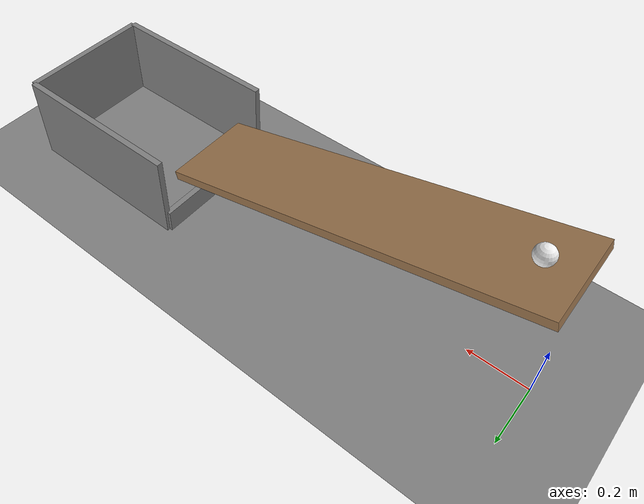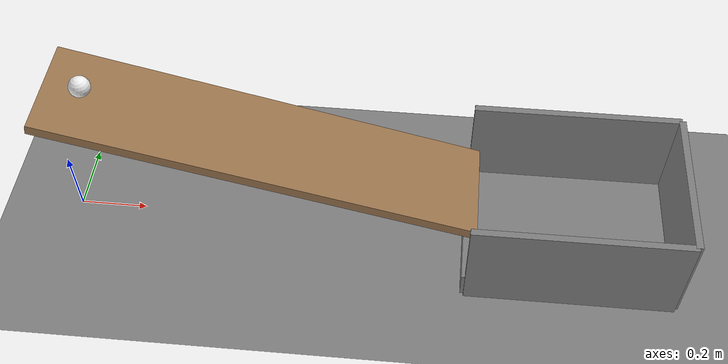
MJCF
<mujoco model="ball_rolls_into_a_cup">
  <compiler angle="radian"/>
  <option timestep="0.002"/>
  <worldbody>
    <geom name="floor" type="plane" size="5 5 0.1" friction="0.8 0.005 0.002"/>
    <body name="ramp start">
    </body>
    <body name="ramp finish">
    </body>
    <body name="ramp">
      <geom name="ramp" type="box" pos="0.6 0 0.34" size="0.620967 0.15 0.015" euler="0 0.260602 0" friction="0.8 0.005 0.001" solref="0.01 1" rgba="0.6 0.45 0.3 1"/>
    </body>
    <body name="cup">
      <geom name="cup_base" type="box" pos="1.48 0 0.01" size="0.3 0.225 0.01"/>
      <geom name="cup_near_wall" type="box" pos="1.18 0 0.04" size="0.01 0.225 0.04"/>
      <geom name="cup_far_wall" type="box" pos="1.78 0 0.15" size="0.01 0.225 0.15"/>
      <geom name="cup_left_wall" type="box" pos="1.48 0.225 0.15" size="0.3 0.01 0.15"/>
      <geom name="cup_right_wall" type="box" pos="1.48 -0.225 0.15" size="0.3 0.01 0.15"/>
    </body>
    <body name="ball" pos="0.108218 0 0.517714">
      <freejoint/>
      <geom name="ball" type="sphere" pos="0 0 0" size="0.03" mass="0.1" condim="6" friction="0.8 0.01 0.002" solref="0.01 1" rgba="0.95 0.95 0.95 1"/>
    </body>
  </worldbody>
  <keyframe>
    <key name="start" qpos="0.108218 0 0.517714 1 0 0 0" qvel="0 0 0 0 0 0"/>
  </keyframe>
</mujoco>
